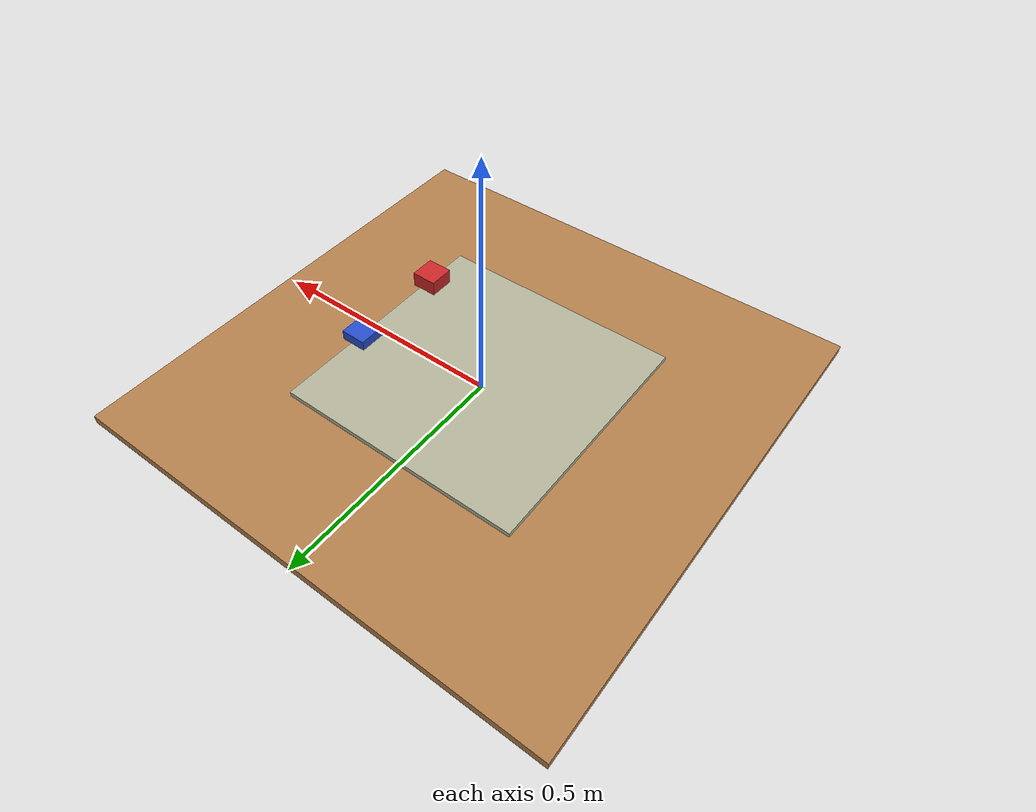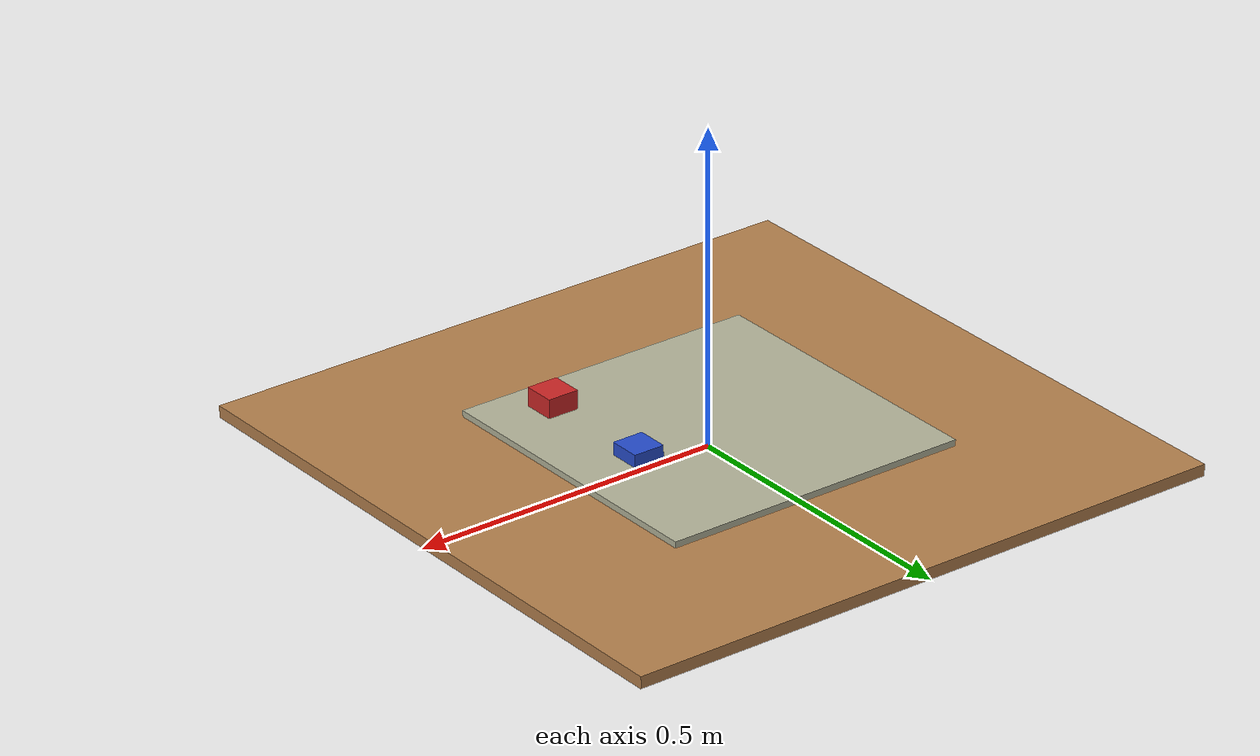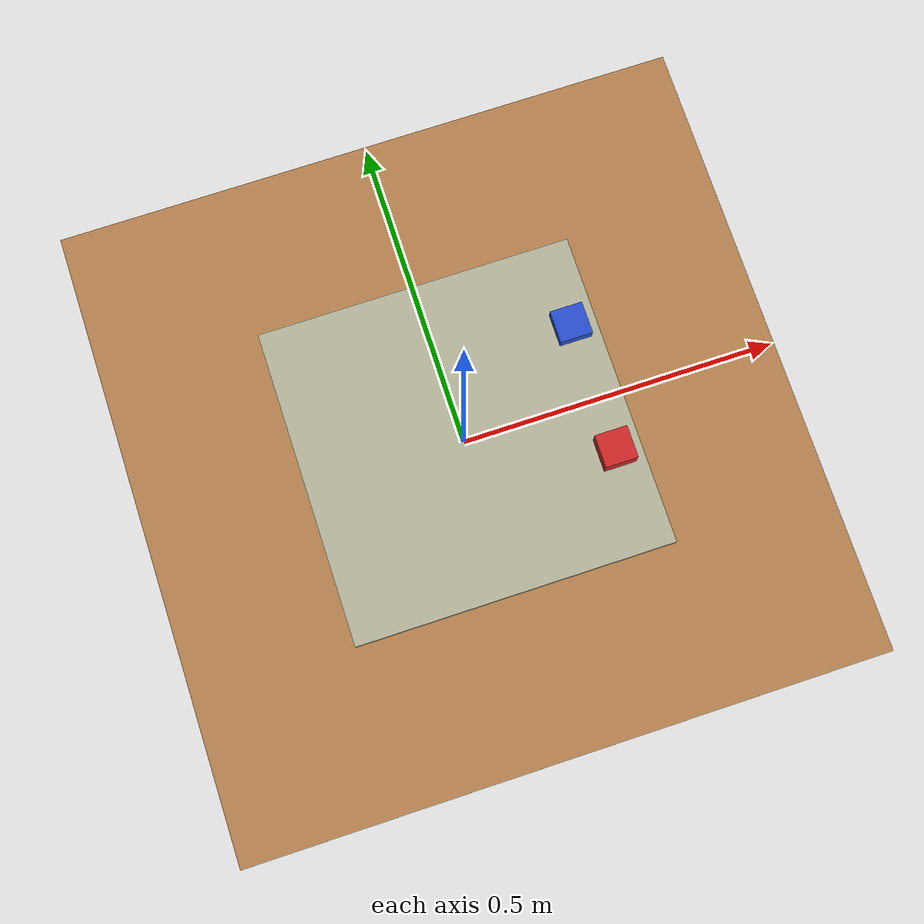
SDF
<?xml version="1.0" encoding="UTF-8"?>
<sdf version="1.4">
	<world name="default">
		<physics type="ode">
			<gravity>0.000000 0.000000 -9.8100</gravity>
			<ode>
				<solver>
					<type>quick</type>
					<iters>50</iters>
					<precon_iters>0</precon_iters>
					<sor>1.300000</sor>
				</solver>
				<constraints>
					<!-- cfm: Between 0.0001 and 0.001 works well (0.001 allows a bit too much elasticity)-->
					<!-- contact_max_correcting_vel: 	Max vel that contacts can generate-->
					<!-- contact_surface_layer: 		Increasing  may improve sensibility-->
				</constraints>
			</ode>
			<max_contacts>1</max_contacts>
		</physics>

		<include>
			<uri>model://sun</uri>
		</include>

		<model name ='table'>
			<static>true</static>
			<pose>0 0 0.01 0 0 0</pose>
			<link name ='table_link'>
				<pose>0 0 0 0 0 0</pose>
				<collision name ='collision'>
					<geometry>
						<box><size>1 1 0.019</size></box>
					</geometry>
				</collision>
				<visual name ='visual'>
					<geometry>
						<box><size>1 1  0.019</size></box>
					</geometry>

					<material><script><uri>file://media/materials/scripts/gazebo.material</uri>
					<name>Gazebo/Wood</name></script></material>
				</visual>

			</link>
		</model>

		<model name ='support'>
			<static>true</static>
			<pose>0.0 0 0.03 0 0 0</pose>
			<link name ='table_link'>
				<pose>0 0 0 0 0 0</pose>
				<collision name ='collision'>
					<geometry><box><size>0.5 0.5 0.01</size></box></geometry>
					<surface>
						<friction><ode><mu>0.1</mu><mu2>0.1</mu2></ode></friction>
							<contact><ode><kp>400000</kp></ode></contact>
					</surface>
				</collision>
				<visual name ='visual'>
					<geometry>
						<box><size>0.5 0.5 0.01</size></box>
					</geometry>

					<material><script><uri>file://media/materials/scripts/gazebo.material</uri>
					<name>Gazebo/Residential</name></script></material>
				</visual>

			</link>
		</model>

			<model name ='severalLinks'>
				<static>false</static>
				<pose>0.2 0.0 0.1 0 0 0</pose>

				<link name ='red'>
					<self_collide>true</self_collide>
					<pose>0 -0.1 0.0 0 0 0</pose>
					<collision name ='collision'>
						<geometry><box><size>0.05 0.05 0.03</size></box></geometry>
						<surface>
							<friction><ode><mu>0.8</mu><mu2>0.8</mu2></ode></friction>
							<contact><ode><kp>2000</kp></ode></contact>
							<bounce>
								<restitution_coefficient>0.1</restitution_coefficient>
								<threshold>5</threshold>
							</bounce>
						</surface>
					</collision>
					<visual name ='visual'>
						<transparency>0.0</transparency>
						<geometry><box><size>0.05 0.05 0.03</size></box></geometry>
					<material><script><uri>file://media/materials/scripts/gazebo.material</uri>
					<name>Gazebo/Red</name></script></material>
					</visual>
					<inertial>
						<pose>0 0 0 0 0 0</pose>
						<mass>0.05</mass>
						<inertia>
							<ixx>0.000014</ixx>
							<ixy>0</ixy>
							<ixz>0</ixz>
							<iyy>0.000014</iyy>
							<iyz>0</iyz>
							<izz>0.0000208</izz>
						</inertia>
					</inertial>
				</link>

				<link name ='blue'>
					<self_collide>true</self_collide>

					<pose>0 0.1 0 0 0 0</pose>
					<collision name ='collision'>
						<geometry><box><size>0.05 0.05 0.02</size></box></geometry>
						<surface>
							<friction><ode><mu>0.8</mu><mu2>0.8</mu2></ode></friction>
							<contact><ode><kp>2000</kp></ode></contact>
							<bounce>
								<restitution_coefficient>0.1</restitution_coefficient>
								<threshold>5</threshold>
							</bounce>
						</surface>
					</collision>
					<visual name ='visual'>
						<transparency>0.0</transparency>
						<geometry><box><size>0.05 0.05 0.02</size></box></geometry>

					<material><script><uri>file://media/materials/scripts/gazebo.material</uri>
					<name>Gazebo/Blue</name></script></material>
					</visual>
					<inertial>
						<pose>0 0 0 0 0 0</pose>
						<inertia>
							<ixx>0.000012</ixx>
							<ixy>0</ixy>
							<ixz>0</ixz>
							<iyy>0.000012</iyy>
							<iyz>0</iyz>
							<izz>0.0000208</izz>
						</inertia>
						<mass>0.05</mass>
					</inertial>

				</link>

				<plugin name="mylinkforce2" filename="libgazebo_ros_force2.so">
					<bodyNames>red blue</bodyNames>
				</plugin>
			</model>

		</world>
	</sdf>
